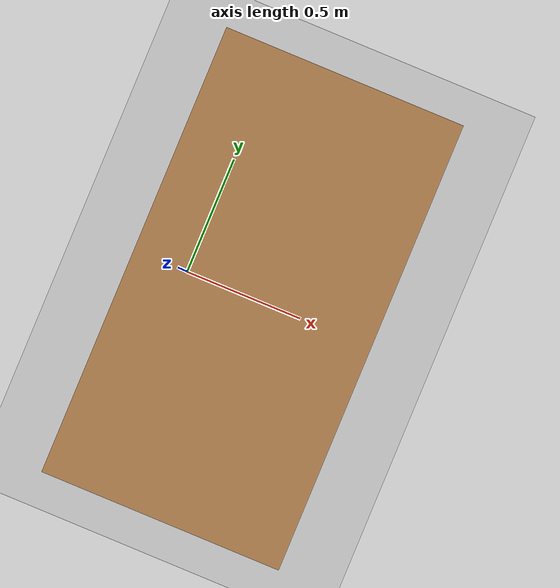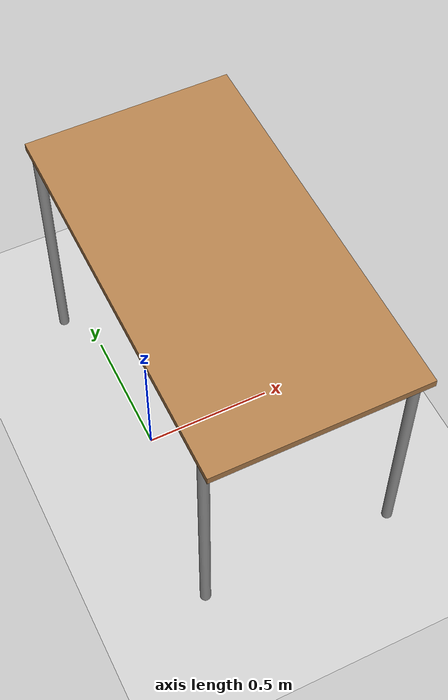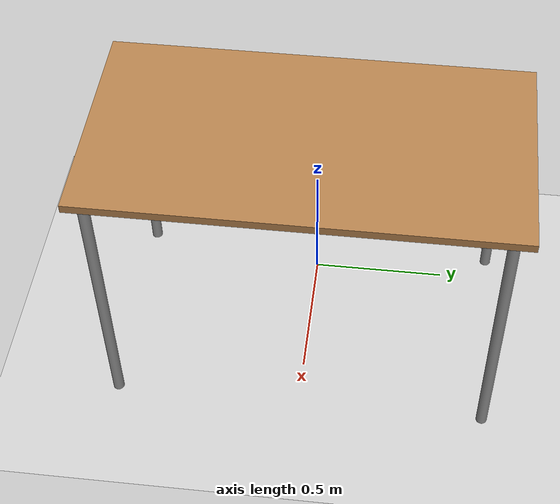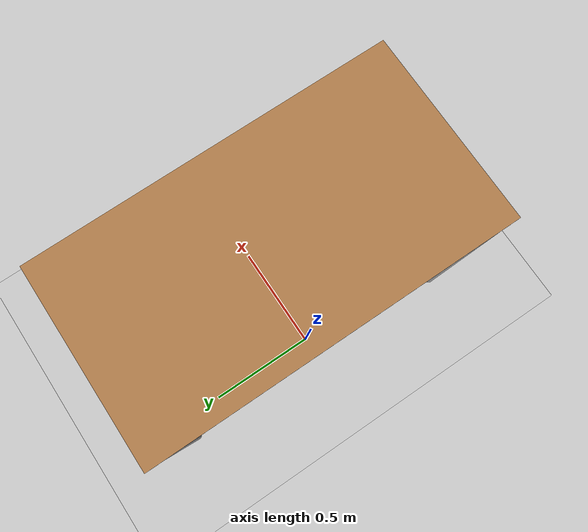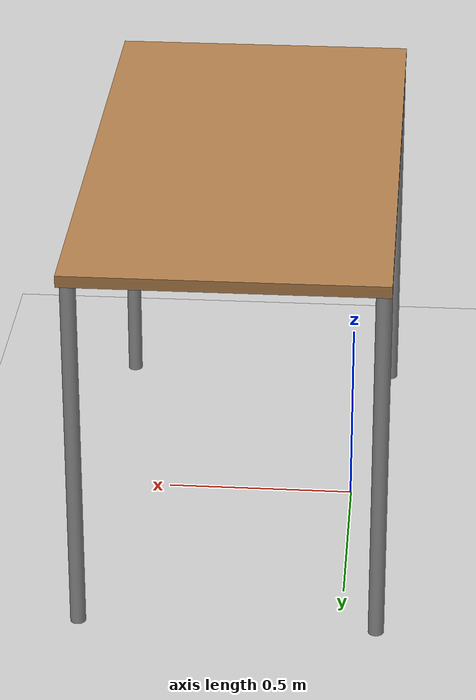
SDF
<sdf version='1.10'>
  <world name='empty'>
    <physics name='1ms' type='ignored'>
      <max_step_size>0.001</max_step_size>
      <real_time_factor>1</real_time_factor>
      <real_time_update_rate>1000</real_time_update_rate>
    </physics>
    <plugin name='gz::sim::systems::Physics' filename='gz-sim-physics-system'/>
    <plugin name='gz::sim::systems::UserCommands' filename='gz-sim-user-commands-system'/>
    <plugin name='gz::sim::systems::SceneBroadcaster' filename='gz-sim-scene-broadcaster-system'/>
    <plugin name='gz::sim::systems::Contact' filename='gz-sim-contact-system'/>
    <plugin filename="gz-sim-sensors-system" name="gz::sim::systems::Sensors"><render_engine>ogre2</render_engine></plugin>
    <gravity>0 0 -9.8000000000000007</gravity>
    <magnetic_field>5.5644999999999998e-06 2.2875799999999999e-05 -4.2388400000000002e-05</magnetic_field>
    <atmosphere type='adiabatic'/>
    <scene>
      <ambient>0.400000006 0.400000006 0.400000006 1</ambient>
      <background>0.699999988 0.699999988 0.699999988 1</background>
      <shadows>false</shadows>
    </scene>
    <model name='ground_plane'>
      <static>true</static>
      <link name='link'>
        <collision name='collision'>
          <geometry>
            <plane>
              <normal>0 0 1</normal>
              <size>100 100</size>
            </plane>
          </geometry>
          <surface>
            <friction>
              <ode/>
            </friction>
            <bounce/>
            <contact/>
          </surface>
        </collision>
        <visual name='visual'>
          <geometry>
            <plane>
              <normal>0 0 1</normal>
              <size>100 100</size>
            </plane>
          </geometry>
          <material>
            <ambient>0.800000012 0.800000012 0.800000012 1</ambient>
            <diffuse>0.800000012 0.800000012 0.800000012 1</diffuse>
            <specular>0.800000012 0.800000012 0.800000012 1</specular>
          </material>
        </visual>
        <pose>0 0 0 0 0 0</pose>
        <inertial>
          <pose>0 0 0 0 0 0</pose>
          <mass>1</mass>
          <inertia>
            <ixx>1</ixx>
            <ixy>0</ixy>
            <ixz>0</ixz>
            <iyy>1</iyy>
            <iyz>0</iyz>
            <izz>1</izz>
          </inertia>
        </inertial>
        <enable_wind>false</enable_wind>
      </link>
      <pose>0 0 0 0 0 0</pose>
      <self_collide>false</self_collide>
    </model>
    <light name='sun' type='directional'>
      <pose>0 0 10 0 0 0</pose>
      <cast_shadows>false</cast_shadows>
      <intensity>1</intensity>
      <direction>-0.5 0.10000000000000001 -0.90000000000000002</direction>
      <diffuse>0.800000012 0.800000012 0.800000012 1</diffuse>
      <specular>0.200000003 0.200000003 0.200000003 1</specular>
      <attenuation>
        <range>1000</range>
        <linear>0.01</linear>
        <constant>0.90000000000000002</constant>
        <quadratic>0.001</quadratic>
      </attenuation>
      <spot>
        <inner_angle>0</inner_angle>
        <outer_angle>0</outer_angle>
        <falloff>0</falloff>
      </spot>
    </light>

    <model name="table">
      <static>true</static>
      <include>
        <uri>model://table</uri>
        <pose>0.29 0 0 0 0 1.5708</pose>
      </include>
    </model>

  </world>
</sdf>

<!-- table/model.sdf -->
<sdf version="1.5">
    <model name="Table">
        <static>true</static>
        <link name="link">
            <collision name="surface">
                <pose>0 0 1.0 0 0 0</pose>
                <geometry>
                    <box>
                        <size>1.5 0.8 0.03</size>
                    </box>
                </geometry>
                <surface>
                    <friction>
                        <ode>
                            <mu>0.6</mu>
                            <mu2>0.6</mu2>
                        </ode>
                    </friction>
                </surface>
            </collision>
            <visual name="visual1">
                <pose>0 0 1.0 0 0 0</pose>
                <geometry>
                    <box>
                        <size>1.5 0.8 0.03</size>
                    </box>
                </geometry>
                <material>
                    <diffuse>1.0 1.0 1.0</diffuse>
                    <script>
                        <uri>file://media/materials/scripts/gazebo.material</uri>
                        <name>Gazebo/Wood</name>
                    </script>
                    <!-- PBR for Ignition, material scripts for gazebo classic-->
                    <pbr>
                        <metal>
                            <albedo_map>https://fuel.ignitionrobotics.org/1.0/openrobotics/models/table/4/files/Table_Diffuse.jpg</albedo_map>
                        </metal>
                    </pbr>
                </material>
            </visual>
            <collision name="front_left_leg">
                <pose>0.68 0.38 0.5 0 0 0</pose>
                <geometry>
                    <cylinder>
                        <radius>0.02</radius>
                        <length>1.0</length>
                    </cylinder>
                </geometry>
            </collision>
            <visual name="front_left_leg">
                <pose>0.68 0.38 0.5 0 0 0</pose>
                <geometry>
                    <cylinder>
                        <radius>0.02</radius>
                        <length>1.0</length>
                    </cylinder>
                </geometry>
                <material>
                    <diffuse>0.5 0.5 0.5</diffuse>
                    <script>
                        <uri>file://media/materials/scripts/gazebo.material</uri>
                        <name>Gazebo/Grey</name>
                    </script>
                </material>
            </visual>
            <collision name="front_right_leg">
                <pose>0.68 -0.38 0.5 0 0 0</pose>
                <geometry>
                    <cylinder>
                        <radius>0.02</radius>
                        <length>1.0</length>
                    </cylinder>
                </geometry>
            </collision>
            <visual name="front_right_leg">
                <pose>0.68 -0.38 0.5 0 0 0</pose>
                <geometry>
                    <cylinder>
                        <radius>0.02</radius>
                        <length>1.0</length>
                    </cylinder>
                </geometry>
                <material>
                    <diffuse>0.5 0.5 0.5</diffuse>
                    <script>
                        <uri>file://media/materials/scripts/gazebo.material</uri>
                        <name>Gazebo/Grey</name>
                    </script>
                </material>
            </visual>
            <collision name="back_right_leg">
                <pose>-0.68 -0.38 0.5 0 0 0</pose>
                <geometry>
                    <cylinder>
                        <radius>0.02</radius>
                        <length>1.0</length>
                    </cylinder>
                </geometry>
            </collision>
            <visual name="back_right_leg">
                <pose>-0.68 -0.38 0.5 0 0 0</pose>
                <geometry>
                    <cylinder>
                        <radius>0.02</radius>
                        <length>1.0</length>
                    </cylinder>
                </geometry>
                <material>
                    <diffuse>0.5 0.5 0.5</diffuse>
                    <script>
                        <uri>file://media/materials/scripts/gazebo.material</uri>
                        <name>Gazebo/Grey</name>
                    </script>
                </material>
            </visual>
            <collision name="back_left_leg">
                <pose>-0.68 0.38 0.5 0 0 0</pose>
                <geometry>
                    <cylinder>
                        <radius>0.02</radius>
                        <length>1.0</length>
                    </cylinder>
                </geometry>
            </collision>
            <visual name="back_left_leg">
                <pose>-0.68 0.38 0.5 0 0 0</pose>
                <geometry>
                    <cylinder>
                        <radius>0.02</radius>
                        <length>1.0</length>
                    </cylinder>
                </geometry>
                <material>
                    <diffuse>0.5 0.5 0.5</diffuse>
                    <script>
                        <uri>file://media/materials/scripts/gazebo.material</uri>
                        <name>Gazebo/Grey</name>
                    </script>
                </material>
            </visual>
        </link>
    </model>
</sdf>
